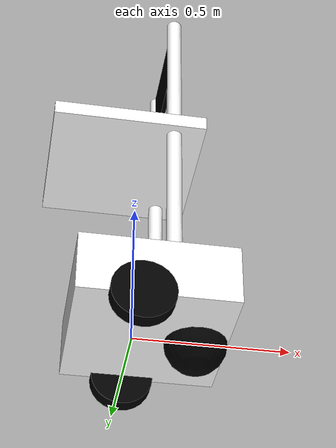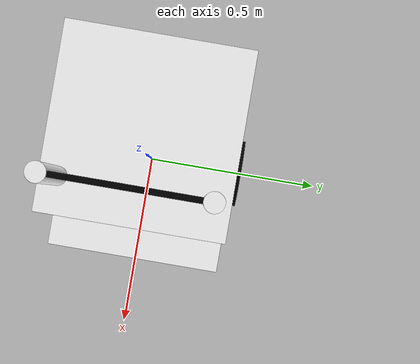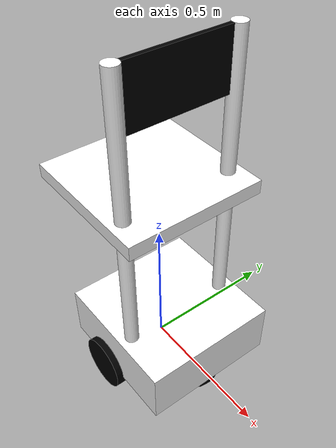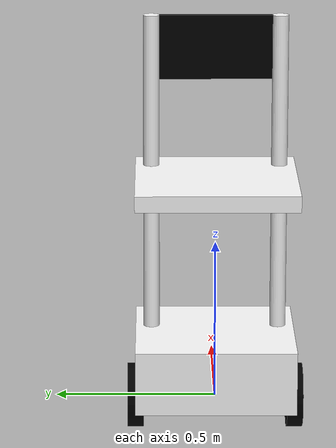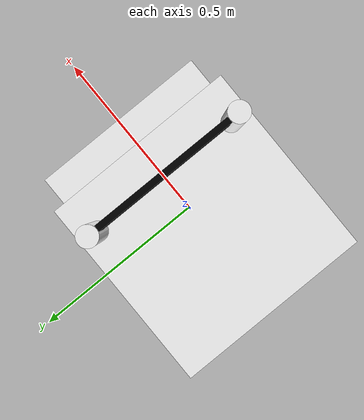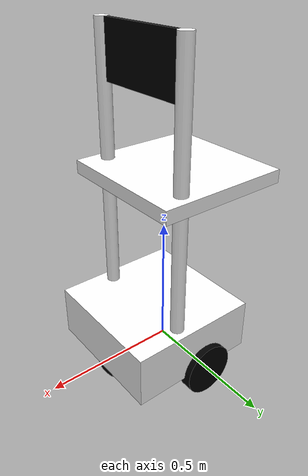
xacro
<?xml version="1.0"?>
<robot xmlns:xacro="http://www.ros.org/wiki/xacro"  >

<xacro:include filename="inertial_macros.xacro"/>

    <material name="white">
        <color rgba="1 1 1 1"/>
    </material>
    <material name="black">
        <color rgba="0 0 0 1"/>
    </material>
    <material name="orange">
        <color rgba="1 0.3 0.1 1"/>
    </material>
    <material name="yellow">
        <color rgba="1 1 0 1"/>
    </material>

<!-- Base_link -->
    <link name="base_link">

    </link>

<!-- BASE_FOOTPRINT LINK -->

<joint name="base_footprint_joint" type="fixed">
    <parent link="base_link"/>
    <child link="base_footprint"/>
    <origin xyz="0 0 0" rpy="0 0 0"/>
</joint>

<link name="base_footprint">
</link>

<!-- Chassis_link -->
    <joint name="chassis_joint" type="fixed">
        <parent link="base_link"/>
        <child link="chassis"/>
        <origin xyz="-0.2 0.0 0.0" />
    </joint>

    <link name="chassis">
        <visual>
            <origin xyz="0.25 0 0.1" />
            <geometry>
                <box size="0.5 0.5 0.2"/>
            </geometry>
            <material name="white"/>
        </visual>
        <collision>
            <origin xyz="0.25 0 0.1" />
            <geometry>
                <box size="0.5 0.5 0.2"/>
            </geometry>
        </collision>
        <xacro:inertial_box mass="5.0" x="0.5" y="0.5" z="0.2">
            <origin xyz="0.25 0.0 0.1" rpy="0.0 0.0 0.0"/>

        </xacro:inertial_box>
    </link>

    <gazebo reference="chassis">
        <material>Gazebo/White</material>
    </gazebo>

<!-- Left_wheel_link -->
    <joint name="left_wheel_joint" type="continuous">
        <parent link="base_link"/>
        <child link="left_wheel"/>
        <origin xyz="0.0 0.25 0.0" rpy="-${pi/2} 0.0 0.0"/>
        <axis xyz="0.0 0.0 1.0"/>

    </joint>

    <link name="left_wheel">
        <visual>
            <geometry>
                <cylinder radius="0.1" length="0.05"/>
            </geometry>
            <material name="black"/>
        </visual>
        <collision>
            <geometry>
                <cylinder radius="0.1" length="0.05"/>
            </geometry>
        </collision>
        <xacro:inertial_cylinder mass="0.1" radius="0.1" length="0.05">
            <origin xyz="0.0 0.0 0.0" rpy="0.0 0.0 0.0"/>

        </xacro:inertial_cylinder>
    </link>

    <gazebo reference="left_wheel">
        <material>Gazebo/Black</material>
    </gazebo>

<!-- Right_wheel_link -->
    <joint name="right_wheel_joint" type="continuous">
        <parent link="base_link"/>
        <child link="right_wheel"/>
        <origin xyz="0.0 -0.25 0.0" rpy="${pi/2} 0.0 0.0"/>
        <axis xyz="0.0 0.0 1.0"/>

    </joint>

    <link name="right_wheel">
        <visual>
            <geometry>
                <cylinder radius="0.1" length="0.05"/>
            </geometry>
            <material name="black"/>
        </visual>
        <collision>
            <geometry>
                <cylinder radius="0.1" length="0.05"/>
            </geometry>
        </collision>
        <xacro:inertial_cylinder mass="0.1" radius="0.1" length="0.05">
            <origin xyz="0.0 0.0 0.0" rpy="0.0 0.0 0.0"/>

        </xacro:inertial_cylinder>
    </link>

    <gazebo reference="right_wheel">
        <material>Gazebo/Black</material>
    </gazebo>

<!-- Caster_wheel_link -->
    <joint name="caster_wheel_joint" type="fixed">
        <parent link="chassis"/>
        <child link="caster_wheel"/>
        <origin xyz="0.4 0.0 0.0" rpy="0.0 0.0 0.0"/>
    </joint>

    <link name="caster_wheel">
        <visual>
            <geometry>
                <sphere radius="0.1"/>
            </geometry>
            <material name="black"/>
        </visual>
        <collision>
            <geometry>
                <sphere radius="0.1"/>
            </geometry>
        </collision>
        <xacro:inertial_sphere mass="50.0" radius="0.1">
            <origin xyz="0.0 0.0 0.0" rpy="0.0 0.0 0.0"/>

        </xacro:inertial_sphere>

    </link>

    <gazebo reference="caster_wheel">
        <material>Gazebo/Black</material>
        <mu1 value="0.001"/>
        <mu2 value="0.001"/>
    </gazebo>

<!-- Left_Pole_Link -->
<joint name="left_pole_joint" type="fixed">
    <parent link="chassis"/>
    <child link="left_pole"/>
    <origin xyz="0.3 0.2 0.7" rpy="0.0 0.0 0.0"/>

</joint>

<link name="left_pole">
    <visual>
        <geometry>
            <cylinder radius="0.025" length="1.0"/>
        </geometry>
        <material name="white"/>
    </visual>
    <collision>
        <geometry>
            <cylinder radius="0.025" length="1.0"/>
        </geometry>
    </collision>
    <xacro:inertial_cylinder mass="0.5" radius="0.025" length="1.0">
        <origin xyz="0.0 0.0 0.0" rpy="0.0 0.0 0.0"/>

    </xacro:inertial_cylinder>
</link>

<gazebo reference="left_pole">
    <material>Gazebo/White</material>
</gazebo>

<!-- Right_Pole_Link -->
<joint name="right_pole_joint" type="fixed">
    <parent link="chassis"/>
    <child link="right_pole"/>
    <origin xyz="0.3 -0.2 0.7" rpy="0.0 0.0 0.0"/>

</joint>

<link name="right_pole">
    <visual>
        <geometry>
            <cylinder radius="0.025" length="1.0"/>
        </geometry>
        <material name="white"/>
    </visual>
    <collision>
        <geometry>
            <cylinder radius="0.025" length="1.0"/>
        </geometry>
    </collision>
    <xacro:inertial_cylinder mass="0.5" radius="0.025" length="1.0">
        <origin xyz="0.0 0.0 0.0" rpy="0.0 0.0 0.0"/>

    </xacro:inertial_cylinder>
</link>

<gazebo reference="right_pole">
    <material>Gazebo/White</material>
</gazebo>

<!-- Panel_Link -->

<joint name="panel_joint" type="fixed">
    <parent link="chassis"/>
    <child link="panel"/>
    <origin xyz="0.15 0.0 1.1" />
</joint>

<link name="panel">
    <visual>
        <origin xyz="0.15 0.0 0.0" rpy="0.0 0.0 ${pi/2}"/>

        <geometry>
            <box size="0.35 0.015 0.2"/>
        </geometry>
        <material name="black"/>
    </visual>
    <collision>
        <origin xyz="0.15 0 0.0" />
        <geometry>
            <box size="0.35 0.15 0.2"/>
        </geometry>
    </collision>
    <xacro:inertial_box mass="0.2" x="0.35" y="0.15" z="0.2">
        <origin xyz="0.0 0.0 0.0" rpy="0.0 0.0 0.0"/>

    </xacro:inertial_box>
</link>

<gazebo reference="panel">
    <material>Gazebo/Black</material>
</gazebo>

<!-- Tray_Link -->
<joint name="tray_joint" type="fixed">
    <parent link="chassis"/>
    <child link="tray_link"/>
    <origin xyz="0.15 0.0 0.7" />
</joint>

<link name="tray_link">
    <visual>
        <origin xyz="0.0 0.0 0.0" rpy="0.0 0.0 0.0"/>

        <geometry>
            <box size="0.5 0.5 0.05"/>
        </geometry>
        <material name="white"/>
    </visual>
    <collision>
        <origin xyz="0.0 0 0.0" />
        <geometry>
            <box size="0.5 0.5 0.05"/>
        </geometry>
    </collision>
    <xacro:inertial_box mass="0.2" x="0.5" y="0.5" z="0.05">
        <origin xyz="0.0 0.0 0.0" rpy="0.0 0.0 0.0"/>

    </xacro:inertial_box>
</link>

<gazebo reference="tray_link">
    <material>Gazebo/White</material>
</gazebo>

</robot>
